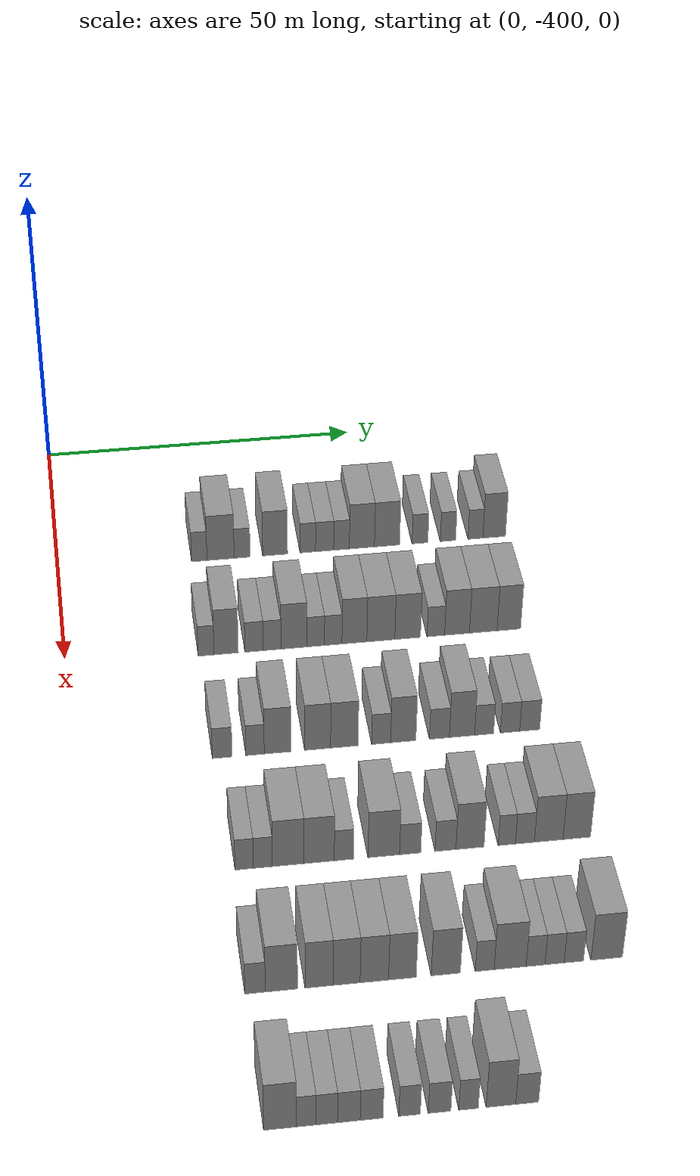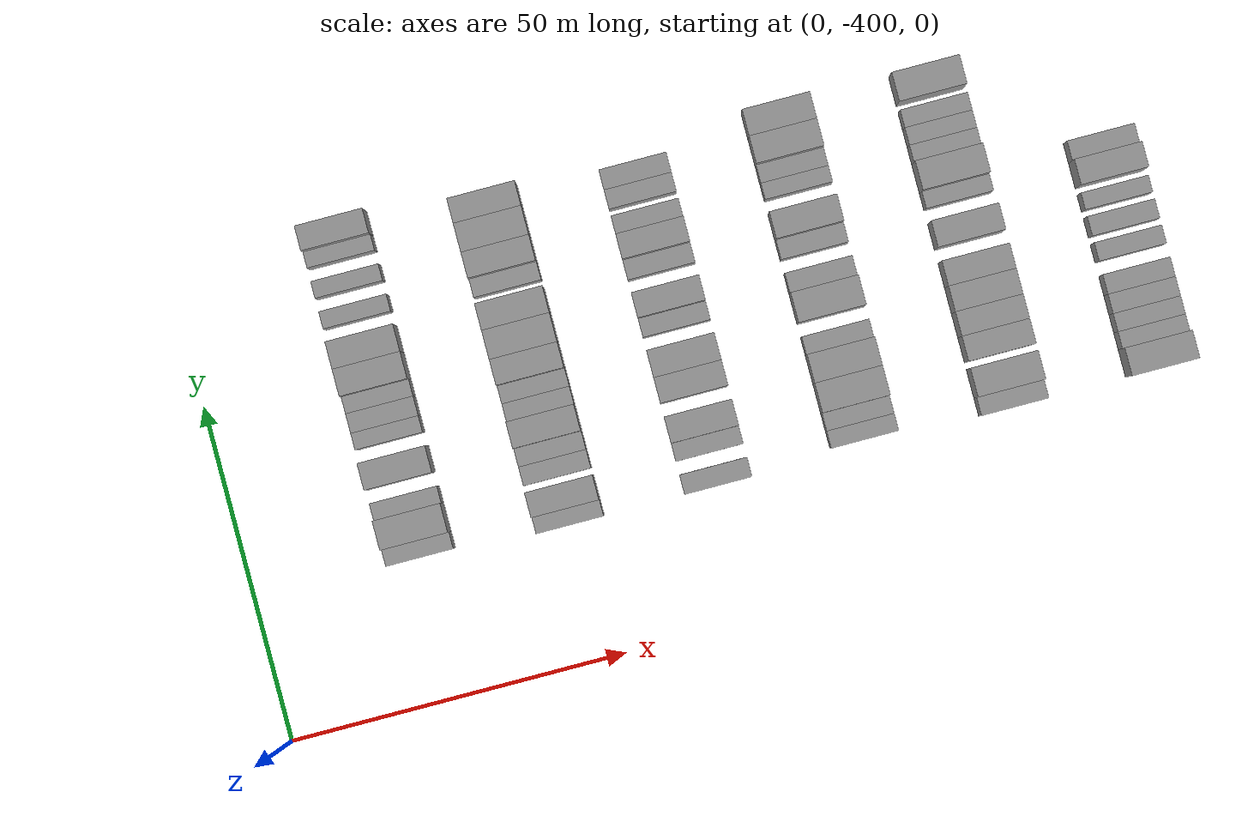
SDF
<sdf version="1.6">
 <world name="default">
  <model name="building_1">
   <static>1</static>
   <pose>25.0000 -377.7746 0 0.000000 0.000000 0.000000</pose>
   <link name="link">
    <pose>0 0 3.00 0 0 0</pose>
    <collision name="collision"><geometry><box><size>10.0000 2.4507 6.0000</size></box></geometry></collision>
    <visual name="visual">
     <cast_shadows>0</cast_shadows>
     <geometry><box><size>10.0000 2.4507 6.0000</size></box></geometry>
     <material>
      <script>
       <uri>model://grey_wall/materials/scripts</uri>
       <uri>model://grey_wall/materials/textures</uri>
       <name>vrc/grey_wall</name>
      </script>
     </material>
    </visual>
   </link>
  </model>
  <model name="building_2">
   <static>1</static>
   <pose>25.0000 -374.3925 0 0.000000 0.000000 0.000000</pose>
   <link name="link">
    <pose>0 0 4.50 0 0 0</pose>
    <collision name="collision"><geometry><box><size>10.0000 4.3136 9.0000</size></box></geometry></collision>
    <visual name="visual">
     <cast_shadows>0</cast_shadows>
     <geometry><box><size>10.0000 4.3136 9.0000</size></box></geometry>
     <material>
      <script>
       <uri>model://grey_wall/materials/scripts</uri>
       <uri>model://grey_wall/materials/textures</uri>
       <name>vrc/grey_wall</name>
      </script>
     </material>
    </visual>
   </link>
  </model>
  <model name="building_3">
   <static>1</static>
   <pose>25.0000 -370.9728 0 0.000000 0.000000 0.000000</pose>
   <link name="link">
    <pose>0 0 3.00 0 0 0</pose>
    <collision name="collision"><geometry><box><size>10.0000 2.5256 6.0000</size></box></geometry></collision>
    <visual name="visual">
     <cast_shadows>0</cast_shadows>
     <geometry><box><size>10.0000 2.5256 6.0000</size></box></geometry>
     <material>
      <script>
       <uri>model://grey_wall/materials/scripts</uri>
       <uri>model://grey_wall/materials/textures</uri>
       <name>vrc/grey_wall</name>
      </script>
     </material>
    </visual>
   </link>
  </model>
  <model name="building_4">
   <static>1</static>
   <pose>25.0000 -365.7302 0 0.000000 0.000000 0.000000</pose>
   <link name="link">
    <pose>0 0 4.50 0 0 0</pose>
    <collision name="collision"><geometry><box><size>10.0000 3.9595 9.0000</size></box></geometry></collision>
    <visual name="visual">
     <cast_shadows>0</cast_shadows>
     <geometry><box><size>10.0000 3.9595 9.0000</size></box></geometry>
     <material>
      <script>
       <uri>model://grey_wall/materials/scripts</uri>
       <uri>model://grey_wall/materials/textures</uri>
       <name>vrc/grey_wall</name>
      </script>
     </material>
    </visual>
   </link>
  </model>
  <model name="building_5">
   <static>1</static>
   <pose>25.0000 -360.5192 0 0.000000 0.000000 0.000000</pose>
   <link name="link">
    <pose>0 0 3.00 0 0 0</pose>
    <collision name="collision"><geometry><box><size>10.0000 2.4626 6.0000</size></box></geometry></collision>
    <visual name="visual">
     <cast_shadows>0</cast_shadows>
     <geometry><box><size>10.0000 2.4626 6.0000</size></box></geometry>
     <material>
      <script>
       <uri>model://grey_wall/materials/scripts</uri>
       <uri>model://grey_wall/materials/textures</uri>
       <name>vrc/grey_wall</name>
      </script>
     </material>
    </visual>
   </link>
  </model>
  <model name="building_6">
   <static>1</static>
   <pose>25.0000 -357.8363 0 0.000000 0.000000 0.000000</pose>
   <link name="link">
    <pose>0 0 3.00 0 0 0</pose>
    <collision name="collision"><geometry><box><size>10.0000 2.9032 6.0000</size></box></geometry></collision>
    <visual name="visual">
     <cast_shadows>0</cast_shadows>
     <geometry><box><size>10.0000 2.9032 6.0000</size></box></geometry>
     <material>
      <script>
       <uri>model://grey_wall/materials/scripts</uri>
       <uri>model://grey_wall/materials/textures</uri>
       <name>vrc/grey_wall</name>
      </script>
     </material>
    </visual>
   </link>
  </model>
  <model name="building_7">
   <static>1</static>
   <pose>25.0000 -355.1290 0 0.000000 0.000000 0.000000</pose>
   <link name="link">
    <pose>0 0 3.00 0 0 0</pose>
    <collision name="collision"><geometry><box><size>10.0000 2.5115 6.0000</size></box></geometry></collision>
    <visual name="visual">
     <cast_shadows>0</cast_shadows>
     <geometry><box><size>10.0000 2.5115 6.0000</size></box></geometry>
     <material>
      <script>
       <uri>model://grey_wall/materials/scripts</uri>
       <uri>model://grey_wall/materials/textures</uri>
       <name>vrc/grey_wall</name>
      </script>
     </material>
    </visual>
   </link>
  </model>
  <model name="building_8">
   <static>1</static>
   <pose>25.0000 -351.8616 0 0.000000 0.000000 0.000000</pose>
   <link name="link">
    <pose>0 0 4.50 0 0 0</pose>
    <collision name="collision"><geometry><box><size>10.0000 4.0233 9.0000</size></box></geometry></collision>
    <visual name="visual">
     <cast_shadows>0</cast_shadows>
     <geometry><box><size>10.0000 4.0233 9.0000</size></box></geometry>
     <material>
      <script>
       <uri>model://grey_wall/materials/scripts</uri>
       <uri>model://grey_wall/materials/textures</uri>
       <name>vrc/grey_wall</name>
      </script>
     </material>
    </visual>
   </link>
  </model>
  <model name="building_9">
   <static>1</static>
   <pose>25.0000 -347.8291 0 0.000000 0.000000 0.000000</pose>
   <link name="link">
    <pose>0 0 4.50 0 0 0</pose>
    <collision name="collision"><geometry><box><size>10.0000 4.0415 9.0000</size></box></geometry></collision>
    <visual name="visual">
     <cast_shadows>0</cast_shadows>
     <geometry><box><size>10.0000 4.0415 9.0000</size></box></geometry>
     <material>
      <script>
       <uri>model://grey_wall/materials/scripts</uri>
       <uri>model://grey_wall/materials/textures</uri>
       <name>vrc/grey_wall</name>
      </script>
     </material>
    </visual>
   </link>
  </model>
  <model name="building_10">
   <static>1</static>
   <pose>25.0000 -342.5372 0 0.000000 0.000000 0.000000</pose>
   <link name="link">
    <pose>0 0 3.00 0 0 0</pose>
    <collision name="collision"><geometry><box><size>10.0000 2.5423 6.0000</size></box></geometry></collision>
    <visual name="visual">
     <cast_shadows>0</cast_shadows>
     <geometry><box><size>10.0000 2.5423 6.0000</size></box></geometry>
     <material>
      <script>
       <uri>model://grey_wall/materials/scripts</uri>
       <uri>model://grey_wall/materials/textures</uri>
       <name>vrc/grey_wall</name>
      </script>
     </material>
    </visual>
   </link>
  </model>
  <model name="building_11">
   <static>1</static>
   <pose>25.0000 -338.0257 0 0.000000 0.000000 0.000000</pose>
   <link name="link">
    <pose>0 0 3.00 0 0 0</pose>
    <collision name="collision"><geometry><box><size>10.0000 2.4809 6.0000</size></box></geometry></collision>
    <visual name="visual">
     <cast_shadows>0</cast_shadows>
     <geometry><box><size>10.0000 2.4809 6.0000</size></box></geometry>
     <material>
      <script>
       <uri>model://grey_wall/materials/scripts</uri>
       <uri>model://grey_wall/materials/textures</uri>
       <name>vrc/grey_wall</name>
      </script>
     </material>
    </visual>
   </link>
  </model>
  <model name="building_12">
   <static>1</static>
   <pose>25.0000 -333.5848 0 0.000000 0.000000 0.000000</pose>
   <link name="link">
    <pose>0 0 3.00 0 0 0</pose>
    <collision name="collision"><geometry><box><size>10.0000 2.4009 6.0000</size></box></geometry></collision>
    <visual name="visual">
     <cast_shadows>0</cast_shadows>
     <geometry><box><size>10.0000 2.4009 6.0000</size></box></geometry>
     <material>
      <script>
       <uri>model://grey_wall/materials/scripts</uri>
       <uri>model://grey_wall/materials/textures</uri>
       <name>vrc/grey_wall</name>
      </script>
     </material>
    </visual>
   </link>
  </model>
  <model name="building_13">
   <static>1</static>
   <pose>25.0000 -330.5529 0 0.000000 0.000000 0.000000</pose>
   <link name="link">
    <pose>0 0 4.50 0 0 0</pose>
    <collision name="collision"><geometry><box><size>10.0000 3.6629 9.0000</size></box></geometry></collision>
    <visual name="visual">
     <cast_shadows>0</cast_shadows>
     <geometry><box><size>10.0000 3.6629 9.0000</size></box></geometry>
     <material>
      <script>
       <uri>model://grey_wall/materials/scripts</uri>
       <uri>model://grey_wall/materials/textures</uri>
       <name>vrc/grey_wall</name>
      </script>
     </material>
    </visual>
   </link>
  </model>
  <model name="building_191">
   <static>1</static>
   <pose>47.0000 -378.7895 0 0.000000 0.000000 0.000000</pose>
   <link name="link">
    <pose>0 0 3.00 0 0 0</pose>
    <collision name="collision"><geometry><box><size>10.0000 2.4209 6.0000</size></box></geometry></collision>
    <visual name="visual">
     <cast_shadows>0</cast_shadows>
     <geometry><box><size>10.0000 2.4209 6.0000</size></box></geometry>
     <material>
      <script>
       <uri>model://grey_wall/materials/scripts</uri>
       <uri>model://grey_wall/materials/textures</uri>
       <name>vrc/grey_wall</name>
      </script>
     </material>
    </visual>
   </link>
  </model>
  <model name="building_192">
   <static>1</static>
   <pose>47.0000 -375.7392 0 0.000000 0.000000 0.000000</pose>
   <link name="link">
    <pose>0 0 4.50 0 0 0</pose>
    <collision name="collision"><geometry><box><size>10.0000 3.6797 9.0000</size></box></geometry></collision>
    <visual name="visual">
     <cast_shadows>0</cast_shadows>
     <geometry><box><size>10.0000 3.6797 9.0000</size></box></geometry>
     <material>
      <script>
       <uri>model://grey_wall/materials/scripts</uri>
       <uri>model://grey_wall/materials/textures</uri>
       <name>vrc/grey_wall</name>
      </script>
     </material>
    </visual>
   </link>
  </model>
  <model name="building_193">
   <static>1</static>
   <pose>47.0000 -371.5059 0 0.000000 0.000000 0.000000</pose>
   <link name="link">
    <pose>0 0 3.00 0 0 0</pose>
    <collision name="collision"><geometry><box><size>10.0000 2.7868 6.0000</size></box></geometry></collision>
    <visual name="visual">
     <cast_shadows>0</cast_shadows>
     <geometry><box><size>10.0000 2.7868 6.0000</size></box></geometry>
     <material>
      <script>
       <uri>model://grey_wall/materials/scripts</uri>
       <uri>model://grey_wall/materials/textures</uri>
       <name>vrc/grey_wall</name>
      </script>
     </material>
    </visual>
   </link>
  </model>
  <model name="building_194">
   <static>1</static>
   <pose>47.0000 -368.7560 0 0.000000 0.000000 0.000000</pose>
   <link name="link">
    <pose>0 0 3.00 0 0 0</pose>
    <collision name="collision"><geometry><box><size>10.0000 2.7129 6.0000</size></box></geometry></collision>
    <visual name="visual">
     <cast_shadows>0</cast_shadows>
     <geometry><box><size>10.0000 2.7129 6.0000</size></box></geometry>
     <material>
      <script>
       <uri>model://grey_wall/materials/scripts</uri>
       <uri>model://grey_wall/materials/textures</uri>
       <name>vrc/grey_wall</name>
      </script>
     </material>
    </visual>
   </link>
  </model>
  <model name="building_195">
   <static>1</static>
   <pose>47.0000 -365.4335 0 0.000000 0.000000 0.000000</pose>
   <link name="link">
    <pose>0 0 4.50 0 0 0</pose>
    <collision name="collision"><geometry><box><size>10.0000 3.9321 9.0000</size></box></geometry></collision>
    <visual name="visual">
     <cast_shadows>0</cast_shadows>
     <geometry><box><size>10.0000 3.9321 9.0000</size></box></geometry>
     <material>
      <script>
       <uri>model://grey_wall/materials/scripts</uri>
       <uri>model://grey_wall/materials/textures</uri>
       <name>vrc/grey_wall</name>
      </script>
     </material>
    </visual>
   </link>
  </model>
  <model name="building_196">
   <static>1</static>
   <pose>47.0000 -362.1093 0 0.000000 0.000000 0.000000</pose>
   <link name="link">
    <pose>0 0 3.00 0 0 0</pose>
    <collision name="collision"><geometry><box><size>10.0000 2.7163 6.0000</size></box></geometry></collision>
    <visual name="visual">
     <cast_shadows>0</cast_shadows>
     <geometry><box><size>10.0000 2.7163 6.0000</size></box></geometry>
     <material>
      <script>
       <uri>model://grey_wall/materials/scripts</uri>
       <uri>model://grey_wall/materials/textures</uri>
       <name>vrc/grey_wall</name>
      </script>
     </material>
    </visual>
   </link>
  </model>
  <model name="building_197">
   <static>1</static>
   <pose>47.0000 -359.4117 0 0.000000 0.000000 0.000000</pose>
   <link name="link">
    <pose>0 0 3.00 0 0 0</pose>
    <collision name="collision"><geometry><box><size>10.0000 2.6789 6.0000</size></box></geometry></collision>
    <visual name="visual">
     <cast_shadows>0</cast_shadows>
     <geometry><box><size>10.0000 2.6789 6.0000</size></box></geometry>
     <material>
      <script>
       <uri>model://grey_wall/materials/scripts</uri>
       <uri>model://grey_wall/materials/textures</uri>
       <name>vrc/grey_wall</name>
      </script>
     </material>
    </visual>
   </link>
  </model>
  <model name="building_198">
   <static>1</static>
   <pose>47.0000 -356.1617 0 0.000000 0.000000 0.000000</pose>
   <link name="link">
    <pose>0 0 4.50 0 0 0</pose>
    <collision name="collision"><geometry><box><size>10.0000 3.8210 9.0000</size></box></geometry></collision>
    <visual name="visual">
     <cast_shadows>0</cast_shadows>
     <geometry><box><size>10.0000 3.8210 9.0000</size></box></geometry>
     <material>
      <script>
       <uri>model://grey_wall/materials/scripts</uri>
       <uri>model://grey_wall/materials/textures</uri>
       <name>vrc/grey_wall</name>
      </script>
     </material>
    </visual>
   </link>
  </model>
  <model name="building_199">
   <static>1</static>
   <pose>47.0000 -352.1010 0 0.000000 0.000000 0.000000</pose>
   <link name="link">
    <pose>0 0 4.50 0 0 0</pose>
    <collision name="collision"><geometry><box><size>10.0000 4.3005 9.0000</size></box></geometry></collision>
    <visual name="visual">
     <cast_shadows>0</cast_shadows>
     <geometry><box><size>10.0000 4.3005 9.0000</size></box></geometry>
     <material>
      <script>
       <uri>model://grey_wall/materials/scripts</uri>
       <uri>model://grey_wall/materials/textures</uri>
       <name>vrc/grey_wall</name>
      </script>
     </material>
    </visual>
   </link>
  </model>
  <model name="building_200">
   <static>1</static>
   <pose>47.0000 -347.9721 0 0.000000 0.000000 0.000000</pose>
   <link name="link">
    <pose>0 0 4.50 0 0 0</pose>
    <collision name="collision"><geometry><box><size>10.0000 3.9573 9.0000</size></box></geometry></collision>
    <visual name="visual">
     <cast_shadows>0</cast_shadows>
     <geometry><box><size>10.0000 3.9573 9.0000</size></box></geometry>
     <material>
      <script>
       <uri>model://grey_wall/materials/scripts</uri>
       <uri>model://grey_wall/materials/textures</uri>
       <name>vrc/grey_wall</name>
      </script>
     </material>
    </visual>
   </link>
  </model>
  <model name="building_201">
   <static>1</static>
   <pose>47.0000 -343.6298 0 0.000000 0.000000 0.000000</pose>
   <link name="link">
    <pose>0 0 3.00 0 0 0</pose>
    <collision name="collision"><geometry><box><size>10.0000 2.7273 6.0000</size></box></geometry></collision>
    <visual name="visual">
     <cast_shadows>0</cast_shadows>
     <geometry><box><size>10.0000 2.7273 6.0000</size></box></geometry>
     <material>
      <script>
       <uri>model://grey_wall/materials/scripts</uri>
       <uri>model://grey_wall/materials/textures</uri>
       <name>vrc/grey_wall</name>
      </script>
     </material>
    </visual>
   </link>
  </model>
  <model name="building_202">
   <static>1</static>
   <pose>47.0000 -340.3457 0 0.000000 0.000000 0.000000</pose>
   <link name="link">
    <pose>0 0 4.50 0 0 0</pose>
    <collision name="collision"><geometry><box><size>10.0000 3.8408 9.0000</size></box></geometry></collision>
    <visual name="visual">
     <cast_shadows>0</cast_shadows>
     <geometry><box><size>10.0000 3.8408 9.0000</size></box></geometry>
     <material>
      <script>
       <uri>model://grey_wall/materials/scripts</uri>
       <uri>model://grey_wall/materials/textures</uri>
       <name>vrc/grey_wall</name>
      </script>
     </material>
    </visual>
   </link>
  </model>
  <model name="building_203">
   <static>1</static>
   <pose>47.0000 -336.2853 0 0.000000 0.000000 0.000000</pose>
   <link name="link">
    <pose>0 0 4.50 0 0 0</pose>
    <collision name="collision"><geometry><box><size>10.0000 4.2800 9.0000</size></box></geometry></collision>
    <visual name="visual">
     <cast_shadows>0</cast_shadows>
     <geometry><box><size>10.0000 4.2800 9.0000</size></box></geometry>
     <material>
      <script>
       <uri>model://grey_wall/materials/scripts</uri>
       <uri>model://grey_wall/materials/textures</uri>
       <name>vrc/grey_wall</name>
      </script>
     </material>
    </visual>
   </link>
  </model>
  <model name="building_204">
   <static>1</static>
   <pose>47.0000 -332.3157 0 0.000000 0.000000 0.000000</pose>
   <link name="link">
    <pose>0 0 4.50 0 0 0</pose>
    <collision name="collision"><geometry><box><size>10.0000 3.6591 9.0000</size></box></geometry></collision>
    <visual name="visual">
     <cast_shadows>0</cast_shadows>
     <geometry><box><size>10.0000 3.6591 9.0000</size></box></geometry>
     <material>
      <script>
       <uri>model://grey_wall/materials/scripts</uri>
       <uri>model://grey_wall/materials/textures</uri>
       <name>vrc/grey_wall</name>
      </script>
     </material>
    </visual>
   </link>
  </model>
  <model name="building_376">
   <static>1</static>
   <pose>69.0000 -378.5574 0 0.000000 0.000000 0.000000</pose>
   <link name="link">
    <pose>0 0 3.00 0 0 0</pose>
    <collision name="collision"><geometry><box><size>10.0000 2.8852 6.0000</size></box></geometry></collision>
    <visual name="visual">
     <cast_shadows>0</cast_shadows>
     <geometry><box><size>10.0000 2.8852 6.0000</size></box></geometry>
     <material>
      <script>
       <uri>model://grey_wall/materials/scripts</uri>
       <uri>model://grey_wall/materials/textures</uri>
       <name>vrc/grey_wall</name>
      </script>
     </material>
    </visual>
   </link>
  </model>
  <model name="building_377">
   <static>1</static>
   <pose>69.0000 -373.7817 0 0.000000 0.000000 0.000000</pose>
   <link name="link">
    <pose>0 0 3.00 0 0 0</pose>
    <collision name="collision"><geometry><box><size>10.0000 2.6663 6.0000</size></box></geometry></collision>
    <visual name="visual">
     <cast_shadows>0</cast_shadows>
     <geometry><box><size>10.0000 2.6663 6.0000</size></box></geometry>
     <material>
      <script>
       <uri>model://grey_wall/materials/scripts</uri>
       <uri>model://grey_wall/materials/textures</uri>
       <name>vrc/grey_wall</name>
      </script>
     </material>
    </visual>
   </link>
  </model>
  <model name="building_378">
   <static>1</static>
   <pose>69.0000 -370.4988 0 0.000000 0.000000 0.000000</pose>
   <link name="link">
    <pose>0 0 4.50 0 0 0</pose>
    <collision name="collision"><geometry><box><size>10.0000 3.8993 9.0000</size></box></geometry></collision>
    <visual name="visual">
     <cast_shadows>0</cast_shadows>
     <geometry><box><size>10.0000 3.8993 9.0000</size></box></geometry>
     <material>
      <script>
       <uri>model://grey_wall/materials/scripts</uri>
       <uri>model://grey_wall/materials/textures</uri>
       <name>vrc/grey_wall</name>
      </script>
     </material>
    </visual>
   </link>
  </model>
  <model name="building_379">
   <static>1</static>
   <pose>69.0000 -364.6531 0 0.000000 0.000000 0.000000</pose>
   <link name="link">
    <pose>0 0 4.50 0 0 0</pose>
    <collision name="collision"><geometry><box><size>10.0000 3.7922 9.0000</size></box></geometry></collision>
    <visual name="visual">
     <cast_shadows>0</cast_shadows>
     <geometry><box><size>10.0000 3.7922 9.0000</size></box></geometry>
     <material>
      <script>
       <uri>model://grey_wall/materials/scripts</uri>
       <uri>model://grey_wall/materials/textures</uri>
       <name>vrc/grey_wall</name>
      </script>
     </material>
    </visual>
   </link>
  </model>
  <model name="building_380">
   <static>1</static>
   <pose>69.0000 -360.7429 0 0.000000 0.000000 0.000000</pose>
   <link name="link">
    <pose>0 0 4.50 0 0 0</pose>
    <collision name="collision"><geometry><box><size>10.0000 4.0283 9.0000</size></box></geometry></collision>
    <visual name="visual">
     <cast_shadows>0</cast_shadows>
     <geometry><box><size>10.0000 4.0283 9.0000</size></box></geometry>
     <material>
      <script>
       <uri>model://grey_wall/materials/scripts</uri>
       <uri>model://grey_wall/materials/textures</uri>
       <name>vrc/grey_wall</name>
      </script>
     </material>
    </visual>
   </link>
  </model>
  <model name="building_381">
   <static>1</static>
   <pose>69.0000 -355.3356 0 0.000000 0.000000 0.000000</pose>
   <link name="link">
    <pose>0 0 3.00 0 0 0</pose>
    <collision name="collision"><geometry><box><size>10.0000 2.7863 6.0000</size></box></geometry></collision>
    <visual name="visual">
     <cast_shadows>0</cast_shadows>
     <geometry><box><size>10.0000 2.7863 6.0000</size></box></geometry>
     <material>
      <script>
       <uri>model://grey_wall/materials/scripts</uri>
       <uri>model://grey_wall/materials/textures</uri>
       <name>vrc/grey_wall</name>
      </script>
     </material>
    </visual>
   </link>
  </model>
  <model name="building_382">
   <static>1</static>
   <pose>69.0000 -352.0781 0 0.000000 0.000000 0.000000</pose>
   <link name="link">
    <pose>0 0 4.50 0 0 0</pose>
    <collision name="collision"><geometry><box><size>10.0000 3.7285 9.0000</size></box></geometry></collision>
    <visual name="visual">
     <cast_shadows>0</cast_shadows>
     <geometry><box><size>10.0000 3.7285 9.0000</size></box></geometry>
     <material>
      <script>
       <uri>model://grey_wall/materials/scripts</uri>
       <uri>model://grey_wall/materials/textures</uri>
       <name>vrc/grey_wall</name>
      </script>
     </material>
    </visual>
   </link>
  </model>
  <model name="building_383">
   <static>1</static>
   <pose>69.0000 -346.7433 0 0.000000 0.000000 0.000000</pose>
   <link name="link">
    <pose>0 0 3.00 0 0 0</pose>
    <collision name="collision"><geometry><box><size>10.0000 2.9411 6.0000</size></box></geometry></collision>
    <visual name="visual">
     <cast_shadows>0</cast_shadows>
     <geometry><box><size>10.0000 2.9411 6.0000</size></box></geometry>
     <material>
      <script>
       <uri>model://grey_wall/materials/scripts</uri>
       <uri>model://grey_wall/materials/textures</uri>
       <name>vrc/grey_wall</name>
      </script>
     </material>
    </visual>
   </link>
  </model>
  <model name="building_384">
   <static>1</static>
   <pose>69.0000 -343.4083 0 0.000000 0.000000 0.000000</pose>
   <link name="link">
    <pose>0 0 4.50 0 0 0</pose>
    <collision name="collision"><geometry><box><size>10.0000 3.7291 9.0000</size></box></geometry></collision>
    <visual name="visual">
     <cast_shadows>0</cast_shadows>
     <geometry><box><size>10.0000 3.7291 9.0000</size></box></geometry>
     <material>
      <script>
       <uri>model://grey_wall/materials/scripts</uri>
       <uri>model://grey_wall/materials/textures</uri>
       <name>vrc/grey_wall</name>
      </script>
     </material>
    </visual>
   </link>
  </model>
  <model name="building_385">
   <static>1</static>
   <pose>69.0000 -340.1259 0 0.000000 0.000000 0.000000</pose>
   <link name="link">
    <pose>0 0 3.00 0 0 0</pose>
    <collision name="collision"><geometry><box><size>10.0000 2.8356 6.0000</size></box></geometry></collision>
    <visual name="visual">
     <cast_shadows>0</cast_shadows>
     <geometry><box><size>10.0000 2.8356 6.0000</size></box></geometry>
     <material>
      <script>
       <uri>model://grey_wall/materials/scripts</uri>
       <uri>model://grey_wall/materials/textures</uri>
       <name>vrc/grey_wall</name>
      </script>
     </material>
    </visual>
   </link>
  </model>
  <model name="building_386">
   <static>1</static>
   <pose>69.0000 -336.2796 0 0.000000 0.000000 0.000000</pose>
   <link name="link">
    <pose>0 0 3.00 0 0 0</pose>
    <collision name="collision"><geometry><box><size>10.0000 2.8570 6.0000</size></box></geometry></collision>
    <visual name="visual">
     <cast_shadows>0</cast_shadows>
     <geometry><box><size>10.0000 2.8570 6.0000</size></box></geometry>
     <material>
      <script>
       <uri>model://grey_wall/materials/scripts</uri>
       <uri>model://grey_wall/materials/textures</uri>
       <name>vrc/grey_wall</name>
      </script>
     </material>
    </visual>
   </link>
  </model>
  <model name="building_387">
   <static>1</static>
   <pose>69.0000 -333.3630 0 0.000000 0.000000 0.000000</pose>
   <link name="link">
    <pose>0 0 3.00 0 0 0</pose>
    <collision name="collision"><geometry><box><size>10.0000 2.9763 6.0000</size></box></geometry></collision>
    <visual name="visual">
     <cast_shadows>0</cast_shadows>
     <geometry><box><size>10.0000 2.9763 6.0000</size></box></geometry>
     <material>
      <script>
       <uri>model://grey_wall/materials/scripts</uri>
       <uri>model://grey_wall/materials/textures</uri>
       <name>vrc/grey_wall</name>
      </script>
     </material>
    </visual>
   </link>
  </model>
  <model name="building_568">
   <static>1</static>
   <pose>91.0000 -377.7199 0 0.000000 0.000000 0.000000</pose>
   <link name="link">
    <pose>0 0 3.00 0 0 0</pose>
    <collision name="collision"><geometry><box><size>10.0000 2.5602 6.0000</size></box></geometry></collision>
    <visual name="visual">
     <cast_shadows>0</cast_shadows>
     <geometry><box><size>10.0000 2.5602 6.0000</size></box></geometry>
     <material>
      <script>
       <uri>model://grey_wall/materials/scripts</uri>
       <uri>model://grey_wall/materials/textures</uri>
       <name>vrc/grey_wall</name>
      </script>
     </material>
    </visual>
   </link>
  </model>
  <model name="building_569">
   <static>1</static>
   <pose>91.0000 -375.1196 0 0.000000 0.000000 0.000000</pose>
   <link name="link">
    <pose>0 0 3.00 0 0 0</pose>
    <collision name="collision"><geometry><box><size>10.0000 2.6404 6.0000</size></box></geometry></collision>
    <visual name="visual">
     <cast_shadows>0</cast_shadows>
     <geometry><box><size>10.0000 2.6404 6.0000</size></box></geometry>
     <material>
      <script>
       <uri>model://grey_wall/materials/scripts</uri>
       <uri>model://grey_wall/materials/textures</uri>
       <name>vrc/grey_wall</name>
      </script>
     </material>
    </visual>
   </link>
  </model>
  <model name="building_570">
   <static>1</static>
   <pose>91.0000 -371.5934 0 0.000000 0.000000 0.000000</pose>
   <link name="link">
    <pose>0 0 4.50 0 0 0</pose>
    <collision name="collision"><geometry><box><size>10.0000 4.4121 9.0000</size></box></geometry></collision>
    <visual name="visual">
     <cast_shadows>0</cast_shadows>
     <geometry><box><size>10.0000 4.4121 9.0000</size></box></geometry>
     <material>
      <script>
       <uri>model://grey_wall/materials/scripts</uri>
       <uri>model://grey_wall/materials/textures</uri>
       <name>vrc/grey_wall</name>
      </script>
     </material>
    </visual>
   </link>
  </model>
  <model name="building_571">
   <static>1</static>
   <pose>91.0000 -367.2801 0 0.000000 0.000000 0.000000</pose>
   <link name="link">
    <pose>0 0 4.50 0 0 0</pose>
    <collision name="collision"><geometry><box><size>10.0000 4.2145 9.0000</size></box></geometry></collision>
    <visual name="visual">
     <cast_shadows>0</cast_shadows>
     <geometry><box><size>10.0000 4.2145 9.0000</size></box></geometry>
     <material>
      <script>
       <uri>model://grey_wall/materials/scripts</uri>
       <uri>model://grey_wall/materials/textures</uri>
       <name>vrc/grey_wall</name>
      </script>
     </material>
    </visual>
   </link>
  </model>
  <model name="building_572">
   <static>1</static>
   <pose>91.0000 -363.8207 0 0.000000 0.000000 0.000000</pose>
   <link name="link">
    <pose>0 0 3.00 0 0 0</pose>
    <collision name="collision"><geometry><box><size>10.0000 2.7043 6.0000</size></box></geometry></collision>
    <visual name="visual">
     <cast_shadows>0</cast_shadows>
     <geometry><box><size>10.0000 2.7043 6.0000</size></box></geometry>
     <material>
      <script>
       <uri>model://grey_wall/materials/scripts</uri>
       <uri>model://grey_wall/materials/textures</uri>
       <name>vrc/grey_wall</name>
      </script>
     </material>
    </visual>
   </link>
  </model>
  <model name="building_573">
   <static>1</static>
   <pose>91.0000 -358.2514 0 0.000000 0.000000 0.000000</pose>
   <link name="link">
    <pose>0 0 4.50 0 0 0</pose>
    <collision name="collision"><geometry><box><size>10.0000 4.4343 9.0000</size></box></geometry></collision>
    <visual name="visual">
     <cast_shadows>0</cast_shadows>
     <geometry><box><size>10.0000 4.4343 9.0000</size></box></geometry>
     <material>
      <script>
       <uri>model://grey_wall/materials/scripts</uri>
       <uri>model://grey_wall/materials/textures</uri>
       <name>vrc/grey_wall</name>
      </script>
     </material>
    </visual>
   </link>
  </model>
  <model name="building_574">
   <static>1</static>
   <pose>91.0000 -354.5365 0 0.000000 0.000000 0.000000</pose>
   <link name="link">
    <pose>0 0 3.00 0 0 0</pose>
    <collision name="collision"><geometry><box><size>10.0000 2.9956 6.0000</size></box></geometry></collision>
    <visual name="visual">
     <cast_shadows>0</cast_shadows>
     <geometry><box><size>10.0000 2.9956 6.0000</size></box></geometry>
     <material>
      <script>
       <uri>model://grey_wall/materials/scripts</uri>
       <uri>model://grey_wall/materials/textures</uri>
       <name>vrc/grey_wall</name>
      </script>
     </material>
    </visual>
   </link>
  </model>
  <model name="building_575">
   <static>1</static>
   <pose>91.0000 -349.5634 0 0.000000 0.000000 0.000000</pose>
   <link name="link">
    <pose>0 0 3.00 0 0 0</pose>
    <collision name="collision"><geometry><box><size>10.0000 2.9506 6.0000</size></box></geometry></collision>
    <visual name="visual">
     <cast_shadows>0</cast_shadows>
     <geometry><box><size>10.0000 2.9506 6.0000</size></box></geometry>
     <material>
      <script>
       <uri>model://grey_wall/materials/scripts</uri>
       <uri>model://grey_wall/materials/textures</uri>
       <name>vrc/grey_wall</name>
      </script>
     </material>
    </visual>
   </link>
  </model>
  <model name="building_576">
   <static>1</static>
   <pose>91.0000 -346.0995 0 0.000000 0.000000 0.000000</pose>
   <link name="link">
    <pose>0 0 4.50 0 0 0</pose>
    <collision name="collision"><geometry><box><size>10.0000 3.9772 9.0000</size></box></geometry></collision>
    <visual name="visual">
     <cast_shadows>0</cast_shadows>
     <geometry><box><size>10.0000 3.9772 9.0000</size></box></geometry>
     <material>
      <script>
       <uri>model://grey_wall/materials/scripts</uri>
       <uri>model://grey_wall/materials/textures</uri>
       <name>vrc/grey_wall</name>
      </script>
     </material>
    </visual>
   </link>
  </model>
  <model name="building_577">
   <static>1</static>
   <pose>91.0000 -340.8945 0 0.000000 0.000000 0.000000</pose>
   <link name="link">
    <pose>0 0 3.00 0 0 0</pose>
    <collision name="collision"><geometry><box><size>10.0000 2.4328 6.0000</size></box></geometry></collision>
    <visual name="visual">
     <cast_shadows>0</cast_shadows>
     <geometry><box><size>10.0000 2.4328 6.0000</size></box></geometry>
     <material>
      <script>
       <uri>model://grey_wall/materials/scripts</uri>
       <uri>model://grey_wall/materials/textures</uri>
       <name>vrc/grey_wall</name>
      </script>
     </material>
    </visual>
   </link>
  </model>
  <model name="building_578">
   <static>1</static>
   <pose>91.0000 -338.3285 0 0.000000 0.000000 0.000000</pose>
   <link name="link">
    <pose>0 0 3.00 0 0 0</pose>
    <collision name="collision"><geometry><box><size>10.0000 2.6993 6.0000</size></box></geometry></collision>
    <visual name="visual">
     <cast_shadows>0</cast_shadows>
     <geometry><box><size>10.0000 2.6993 6.0000</size></box></geometry>
     <material>
      <script>
       <uri>model://grey_wall/materials/scripts</uri>
       <uri>model://grey_wall/materials/textures</uri>
       <name>vrc/grey_wall</name>
      </script>
     </material>
    </visual>
   </link>
  </model>
  <model name="building_579">
   <static>1</static>
   <pose>91.0000 -334.9475 0 0.000000 0.000000 0.000000</pose>
   <link name="link">
    <pose>0 0 4.50 0 0 0</pose>
    <collision name="collision"><geometry><box><size>10.0000 4.0627 9.0000</size></box></geometry></collision>
    <visual name="visual">
     <cast_shadows>0</cast_shadows>
     <geometry><box><size>10.0000 4.0627 9.0000</size></box></geometry>
     <material>
      <script>
       <uri>model://grey_wall/materials/scripts</uri>
       <uri>model://grey_wall/materials/textures</uri>
       <name>vrc/grey_wall</name>
      </script>
     </material>
    </visual>
   </link>
  </model>
  <model name="building_580">
   <static>1</static>
   <pose>91.0000 -330.9551 0 0.000000 0.000000 0.000000</pose>
   <link name="link">
    <pose>0 0 4.50 0 0 0</pose>
    <collision name="collision"><geometry><box><size>10.0000 3.9221 9.0000</size></box></geometry></collision>
    <visual name="visual">
     <cast_shadows>0</cast_shadows>
     <geometry><box><size>10.0000 3.9221 9.0000</size></box></geometry>
     <material>
      <script>
       <uri>model://grey_wall/materials/scripts</uri>
       <uri>model://grey_wall/materials/textures</uri>
       <name>vrc/grey_wall</name>
      </script>
     </material>
    </visual>
   </link>
  </model>
  <model name="building_755">
   <static>1</static>
   <pose>113.0000 -378.6455 0 0.000000 0.000000 0.000000</pose>
   <link name="link">
    <pose>0 0 3.00 0 0 0</pose>
    <collision name="collision"><geometry><box><size>10.0000 2.7090 6.0000</size></box></geometry></collision>
    <visual name="visual">
     <cast_shadows>0</cast_shadows>
     <geometry><box><size>10.0000 2.7090 6.0000</size></box></geometry>
     <material>
      <script>
       <uri>model://grey_wall/materials/scripts</uri>
       <uri>model://grey_wall/materials/textures</uri>
       <name>vrc/grey_wall</name>
      </script>
     </material>
    </visual>
   </link>
  </model>
  <model name="building_756">
   <static>1</static>
   <pose>113.0000 -375.1578 0 0.000000 0.000000 0.000000</pose>
   <link name="link">
    <pose>0 0 4.50 0 0 0</pose>
    <collision name="collision"><geometry><box><size>10.0000 4.2665 9.0000</size></box></geometry></collision>
    <visual name="visual">
     <cast_shadows>0</cast_shadows>
     <geometry><box><size>10.0000 4.2665 9.0000</size></box></geometry>
     <material>
      <script>
       <uri>model://grey_wall/materials/scripts</uri>
       <uri>model://grey_wall/materials/textures</uri>
       <name>vrc/grey_wall</name>
      </script>
     </material>
    </visual>
   </link>
  </model>
  <model name="building_757">
   <static>1</static>
   <pose>113.0000 -370.1663 0 0.000000 0.000000 0.000000</pose>
   <link name="link">
    <pose>0 0 4.50 0 0 0</pose>
    <collision name="collision"><geometry><box><size>10.0000 3.7163 9.0000</size></box></geometry></collision>
    <visual name="visual">
     <cast_shadows>0</cast_shadows>
     <geometry><box><size>10.0000 3.7163 9.0000</size></box></geometry>
     <material>
      <script>
       <uri>model://grey_wall/materials/scripts</uri>
       <uri>model://grey_wall/materials/textures</uri>
       <name>vrc/grey_wall</name>
      </script>
     </material>
    </visual>
   </link>
  </model>
  <model name="building_758">
   <static>1</static>
   <pose>113.0000 -366.5022 0 0.000000 0.000000 0.000000</pose>
   <link name="link">
    <pose>0 0 4.50 0 0 0</pose>
    <collision name="collision"><geometry><box><size>10.0000 3.6119 9.0000</size></box></geometry></collision>
    <visual name="visual">
     <cast_shadows>0</cast_shadows>
     <geometry><box><size>10.0000 3.6119 9.0000</size></box></geometry>
     <material>
      <script>
       <uri>model://grey_wall/materials/scripts</uri>
       <uri>model://grey_wall/materials/textures</uri>
       <name>vrc/grey_wall</name>
      </script>
     </material>
    </visual>
   </link>
  </model>
  <model name="building_759">
   <static>1</static>
   <pose>113.0000 -362.7983 0 0.000000 0.000000 0.000000</pose>
   <link name="link">
    <pose>0 0 4.50 0 0 0</pose>
    <collision name="collision"><geometry><box><size>10.0000 3.7959 9.0000</size></box></geometry></collision>
    <visual name="visual">
     <cast_shadows>0</cast_shadows>
     <geometry><box><size>10.0000 3.7959 9.0000</size></box></geometry>
     <material>
      <script>
       <uri>model://grey_wall/materials/scripts</uri>
       <uri>model://grey_wall/materials/textures</uri>
       <name>vrc/grey_wall</name>
      </script>
     </material>
    </visual>
   </link>
  </model>
  <model name="building_760">
   <static>1</static>
   <pose>113.0000 -359.0449 0 0.000000 0.000000 0.000000</pose>
   <link name="link">
    <pose>0 0 4.50 0 0 0</pose>
    <collision name="collision"><geometry><box><size>10.0000 3.7109 9.0000</size></box></geometry></collision>
    <visual name="visual">
     <cast_shadows>0</cast_shadows>
     <geometry><box><size>10.0000 3.7109 9.0000</size></box></geometry>
     <material>
      <script>
       <uri>model://grey_wall/materials/scripts</uri>
       <uri>model://grey_wall/materials/textures</uri>
       <name>vrc/grey_wall</name>
      </script>
     </material>
    </visual>
   </link>
  </model>
  <model name="building_761">
   <static>1</static>
   <pose>113.0000 -353.2288 0 0.000000 0.000000 0.000000</pose>
   <link name="link">
    <pose>0 0 4.50 0 0 0</pose>
    <collision name="collision"><geometry><box><size>10.0000 3.9214 9.0000</size></box></geometry></collision>
    <visual name="visual">
     <cast_shadows>0</cast_shadows>
     <geometry><box><size>10.0000 3.9214 9.0000</size></box></geometry>
     <material>
      <script>
       <uri>model://grey_wall/materials/scripts</uri>
       <uri>model://grey_wall/materials/textures</uri>
       <name>vrc/grey_wall</name>
      </script>
     </material>
    </visual>
   </link>
  </model>
  <model name="building_762">
   <static>1</static>
   <pose>113.0000 -348.0009 0 0.000000 0.000000 0.000000</pose>
   <link name="link">
    <pose>0 0 3.00 0 0 0</pose>
    <collision name="collision"><geometry><box><size>10.0000 2.5344 6.0000</size></box></geometry></collision>
    <visual name="visual">
     <cast_shadows>0</cast_shadows>
     <geometry><box><size>10.0000 2.5344 6.0000</size></box></geometry>
     <material>
      <script>
       <uri>model://grey_wall/materials/scripts</uri>
       <uri>model://grey_wall/materials/textures</uri>
       <name>vrc/grey_wall</name>
      </script>
     </material>
    </visual>
   </link>
  </model>
  <model name="building_763">
   <static>1</static>
   <pose>113.0000 -344.5751 0 0.000000 0.000000 0.000000</pose>
   <link name="link">
    <pose>0 0 4.50 0 0 0</pose>
    <collision name="collision"><geometry><box><size>10.0000 4.3171 9.0000</size></box></geometry></collision>
    <visual name="visual">
     <cast_shadows>0</cast_shadows>
     <geometry><box><size>10.0000 4.3171 9.0000</size></box></geometry>
     <material>
      <script>
       <uri>model://grey_wall/materials/scripts</uri>
       <uri>model://grey_wall/materials/textures</uri>
       <name>vrc/grey_wall</name>
      </script>
     </material>
    </visual>
   </link>
  </model>
  <model name="building_764">
   <static>1</static>
   <pose>113.0000 -341.1428 0 0.000000 0.000000 0.000000</pose>
   <link name="link">
    <pose>0 0 3.00 0 0 0</pose>
    <collision name="collision"><geometry><box><size>10.0000 2.5475 6.0000</size></box></geometry></collision>
    <visual name="visual">
     <cast_shadows>0</cast_shadows>
     <geometry><box><size>10.0000 2.5475 6.0000</size></box></geometry>
     <material>
      <script>
       <uri>model://grey_wall/materials/scripts</uri>
       <uri>model://grey_wall/materials/textures</uri>
       <name>vrc/grey_wall</name>
      </script>
     </material>
    </visual>
   </link>
  </model>
  <model name="building_765">
   <static>1</static>
   <pose>113.0000 -338.5694 0 0.000000 0.000000 0.000000</pose>
   <link name="link">
    <pose>0 0 3.00 0 0 0</pose>
    <collision name="collision"><geometry><box><size>10.0000 2.5994 6.0000</size></box></geometry></collision>
    <visual name="visual">
     <cast_shadows>0</cast_shadows>
     <geometry><box><size>10.0000 2.5994 6.0000</size></box></geometry>
     <material>
      <script>
       <uri>model://grey_wall/materials/scripts</uri>
       <uri>model://grey_wall/materials/textures</uri>
       <name>vrc/grey_wall</name>
      </script>
     </material>
    </visual>
   </link>
  </model>
  <model name="building_766">
   <static>1</static>
   <pose>113.0000 -335.9576 0 0.000000 0.000000 0.000000</pose>
   <link name="link">
    <pose>0 0 3.00 0 0 0</pose>
    <collision name="collision"><geometry><box><size>10.0000 2.6242 6.0000</size></box></geometry></collision>
    <visual name="visual">
     <cast_shadows>0</cast_shadows>
     <geometry><box><size>10.0000 2.6242 6.0000</size></box></geometry>
     <material>
      <script>
       <uri>model://grey_wall/materials/scripts</uri>
       <uri>model://grey_wall/materials/textures</uri>
       <name>vrc/grey_wall</name>
      </script>
     </material>
    </visual>
   </link>
  </model>
  <model name="building_767">
   <static>1</static>
   <pose>113.0000 -331.5012 0 0.000000 0.000000 0.000000</pose>
   <link name="link">
    <pose>0 0 4.50 0 0 0</pose>
    <collision name="collision"><geometry><box><size>10.0000 4.2886 9.0000</size></box></geometry></collision>
    <visual name="visual">
     <cast_shadows>0</cast_shadows>
     <geometry><box><size>10.0000 4.2886 9.0000</size></box></geometry>
     <material>
      <script>
       <uri>model://grey_wall/materials/scripts</uri>
       <uri>model://grey_wall/materials/textures</uri>
       <name>vrc/grey_wall</name>
      </script>
     </material>
    </visual>
   </link>
  </model>
  <model name="building_932">
   <static>1</static>
   <pose>135.0000 -377.9365 0 0.000000 0.000000 0.000000</pose>
   <link name="link">
    <pose>0 0 4.50 0 0 0</pose>
    <collision name="collision"><geometry><box><size>10.0000 4.1269 9.0000</size></box></geometry></collision>
    <visual name="visual">
     <cast_shadows>0</cast_shadows>
     <geometry><box><size>10.0000 4.1269 9.0000</size></box></geometry>
     <material>
      <script>
       <uri>model://grey_wall/materials/scripts</uri>
       <uri>model://grey_wall/materials/textures</uri>
       <name>vrc/grey_wall</name>
      </script>
     </material>
    </visual>
   </link>
  </model>
  <model name="building_933">
   <static>1</static>
   <pose>135.0000 -374.6294 0 0.000000 0.000000 0.000000</pose>
   <link name="link">
    <pose>0 0 3.00 0 0 0</pose>
    <collision name="collision"><geometry><box><size>10.0000 2.4874 6.0000</size></box></geometry></collision>
    <visual name="visual">
     <cast_shadows>0</cast_shadows>
     <geometry><box><size>10.0000 2.4874 6.0000</size></box></geometry>
     <material>
      <script>
       <uri>model://grey_wall/materials/scripts</uri>
       <uri>model://grey_wall/materials/textures</uri>
       <name>vrc/grey_wall</name>
      </script>
     </material>
    </visual>
   </link>
  </model>
  <model name="building_934">
   <static>1</static>
   <pose>135.0000 -372.0374 0 0.000000 0.000000 0.000000</pose>
   <link name="link">
    <pose>0 0 3.00 0 0 0</pose>
    <collision name="collision"><geometry><box><size>10.0000 2.6967 6.0000</size></box></geometry></collision>
    <visual name="visual">
     <cast_shadows>0</cast_shadows>
     <geometry><box><size>10.0000 2.6967 6.0000</size></box></geometry>
     <material>
      <script>
       <uri>model://grey_wall/materials/scripts</uri>
       <uri>model://grey_wall/materials/textures</uri>
       <name>vrc/grey_wall</name>
      </script>
     </material>
    </visual>
   </link>
  </model>
  <model name="building_935">
   <static>1</static>
   <pose>135.0000 -369.2540 0 0.000000 0.000000 0.000000</pose>
   <link name="link">
    <pose>0 0 3.00 0 0 0</pose>
    <collision name="collision"><geometry><box><size>10.0000 2.8701 6.0000</size></box></geometry></collision>
    <visual name="visual">
     <cast_shadows>0</cast_shadows>
     <geometry><box><size>10.0000 2.8701 6.0000</size></box></geometry>
     <material>
      <script>
       <uri>model://grey_wall/materials/scripts</uri>
       <uri>model://grey_wall/materials/textures</uri>
       <name>vrc/grey_wall</name>
      </script>
     </material>
    </visual>
   </link>
  </model>
  <model name="building_936">
   <static>1</static>
   <pose>135.0000 -366.3694 0 0.000000 0.000000 0.000000</pose>
   <link name="link">
    <pose>0 0 3.00 0 0 0</pose>
    <collision name="collision"><geometry><box><size>10.0000 2.8991 6.0000</size></box></geometry></collision>
    <visual name="visual">
     <cast_shadows>0</cast_shadows>
     <geometry><box><size>10.0000 2.8991 6.0000</size></box></geometry>
     <material>
      <script>
       <uri>model://grey_wall/materials/scripts</uri>
       <uri>model://grey_wall/materials/textures</uri>
       <name>vrc/grey_wall</name>
      </script>
     </material>
    </visual>
   </link>
  </model>
  <model name="building_937">
   <static>1</static>
   <pose>135.0000 -361.5490 0 0.000000 0.000000 0.000000</pose>
   <link name="link">
    <pose>0 0 3.00 0 0 0</pose>
    <collision name="collision"><geometry><box><size>10.0000 2.7417 6.0000</size></box></geometry></collision>
    <visual name="visual">
     <cast_shadows>0</cast_shadows>
     <geometry><box><size>10.0000 2.7417 6.0000</size></box></geometry>
     <material>
      <script>
       <uri>model://grey_wall/materials/scripts</uri>
       <uri>model://grey_wall/materials/textures</uri>
       <name>vrc/grey_wall</name>
      </script>
     </material>
    </visual>
   </link>
  </model>
  <model name="building_938">
   <static>1</static>
   <pose>135.0000 -357.7359 0 0.000000 0.000000 0.000000</pose>
   <link name="link">
    <pose>0 0 3.00 0 0 0</pose>
    <collision name="collision"><geometry><box><size>10.0000 2.8846 6.0000</size></box></geometry></collision>
    <visual name="visual">
     <cast_shadows>0</cast_shadows>
     <geometry><box><size>10.0000 2.8846 6.0000</size></box></geometry>
     <material>
      <script>
       <uri>model://grey_wall/materials/scripts</uri>
       <uri>model://grey_wall/materials/textures</uri>
       <name>vrc/grey_wall</name>
      </script>
     </material>
    </visual>
   </link>
  </model>
  <model name="building_939">
   <static>1</static>
   <pose>135.0000 -354.0431 0 0.000000 0.000000 0.000000</pose>
   <link name="link">
    <pose>0 0 3.00 0 0 0</pose>
    <collision name="collision"><geometry><box><size>10.0000 2.5010 6.0000</size></box></geometry></collision>
    <visual name="visual">
     <cast_shadows>0</cast_shadows>
     <geometry><box><size>10.0000 2.5010 6.0000</size></box></geometry>
     <material>
      <script>
       <uri>model://grey_wall/materials/scripts</uri>
       <uri>model://grey_wall/materials/textures</uri>
       <name>vrc/grey_wall</name>
      </script>
     </material>
    </visual>
   </link>
  </model>
  <model name="building_940">
   <static>1</static>
   <pose>135.0000 -349.9041 0 0.000000 0.000000 0.000000</pose>
   <link name="link">
    <pose>0 0 4.50 0 0 0</pose>
    <collision name="collision"><geometry><box><size>10.0000 3.7770 9.0000</size></box></geometry></collision>
    <visual name="visual">
     <cast_shadows>0</cast_shadows>
     <geometry><box><size>10.0000 3.7770 9.0000</size></box></geometry>
     <material>
      <script>
       <uri>model://grey_wall/materials/scripts</uri>
       <uri>model://grey_wall/materials/textures</uri>
       <name>vrc/grey_wall</name>
      </script>
     </material>
    </visual>
   </link>
  </model>
  <model name="building_941">
   <static>1</static>
   <pose>135.0000 -346.5451 0 0.000000 0.000000 0.000000</pose>
   <link name="link">
    <pose>0 0 3.00 0 0 0</pose>
    <collision name="collision"><geometry><box><size>10.0000 2.9410 6.0000</size></box></geometry></collision>
    <visual name="visual">
     <cast_shadows>0</cast_shadows>
     <geometry><box><size>10.0000 2.9410 6.0000</size></box></geometry>
     <material>
      <script>
       <uri>model://grey_wall/materials/scripts</uri>
       <uri>model://grey_wall/materials/textures</uri>
       <name>vrc/grey_wall</name>
      </script>
     </material>
    </visual>
   </link>
  </model>
 </world>
</sdf>
